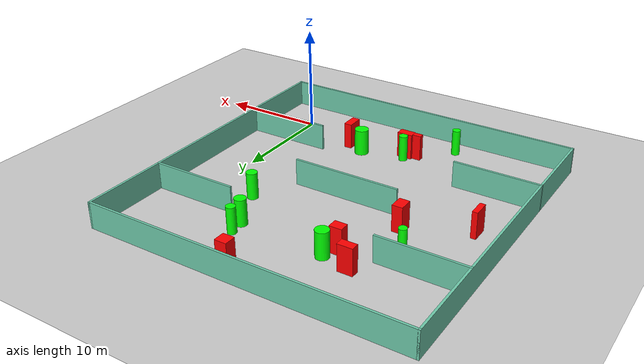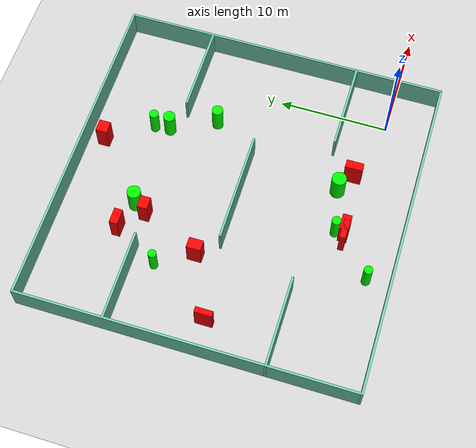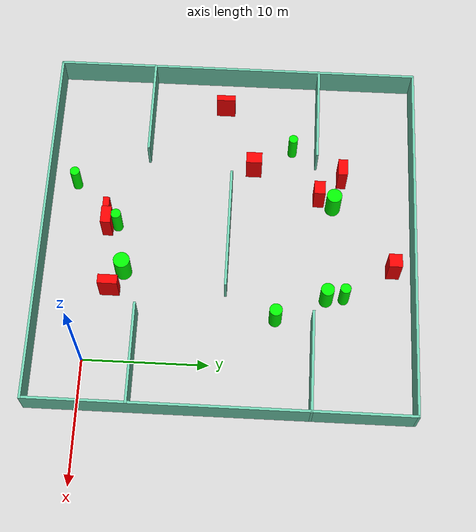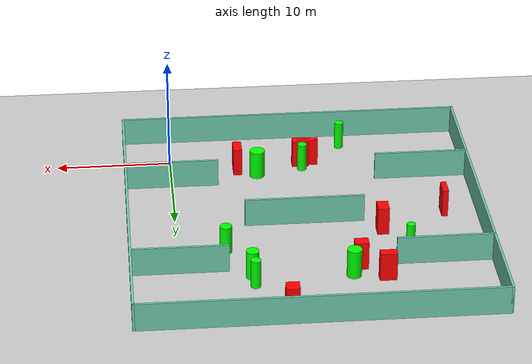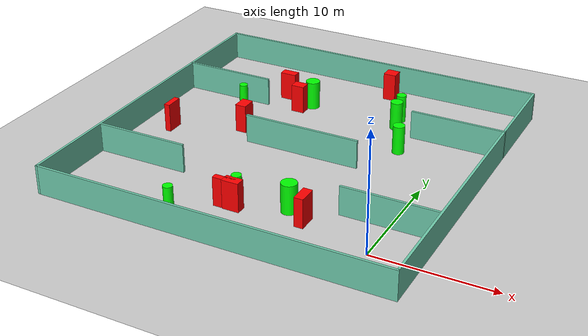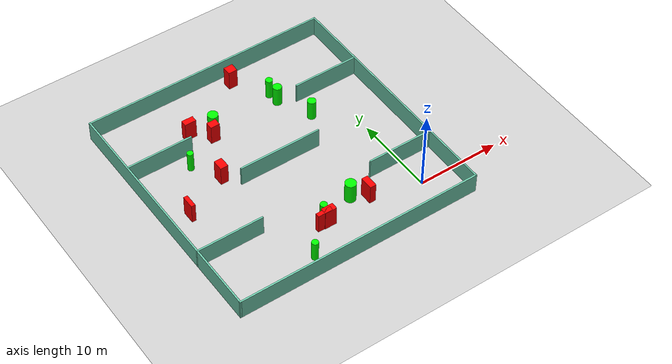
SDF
<sdf version="1.7">
 <world name="default">
  <light name="sun" type="directional">
   <pose>0 0 10 0 -0 0</pose>
   <diffuse>0.8 0.8 0.8 1</diffuse>
   <specular>0.2 0.2 0.2 1</specular>
   <attenuation>
    <range>1000</range>
    <constant>0.9</constant>
    <linear>0.01</linear>
    <quadratic>0.001</quadratic>
   </attenuation>
   <direction>-0.5 0.1 -0.9</direction>
   <spot><inner_angle>0</inner_angle><outer_angle>0</outer_angle><falloff>0</falloff></spot>
  </light>
  <model name="ground_plane">
   <static>1</static>
   <link name="link">
    <collision name="collision">
     <geometry><plane><normal>0 0 1</normal><size>100 100</size></plane></geometry>
     <surface>
      <contact><collide_bitmask>65535</collide_bitmask></contact>
      <friction><ode><mu>100</mu><mu2>50</mu2></ode></friction>
     </surface>
    </collision>
    <visual name="visual">
     <cast_shadows>0</cast_shadows>
     <geometry><plane><normal>0 0 1</normal><size>100 100</size></plane></geometry>
     <material>
      <script><uri>file://media/materials/scripts/gazebo.material</uri><name>Gazebo/Grey</name></script>
     </material>
    </visual>
   </link>
  </model>
  <gravity>0 0 -9.8</gravity>
  <magnetic_field>6e-06 2.3e-05 -4.2e-05</magnetic_field>
  <atmosphere type="adiabatic"/>
  <physics type="ode">
   <max_step_size>0.001</max_step_size>
   <real_time_factor>1</real_time_factor>
   <real_time_update_rate>1000</real_time_update_rate>
  </physics>
  <scene><ambient>0.4 0.4 0.4 1</ambient><background>0.7 0.7 0.7 1</background><shadows>1</shadows></scene>
  <spherical_coordinates>
   <surface_model>EARTH_WGS84</surface_model>
   <latitude_deg>0</latitude_deg>
   <longitude_deg>0</longitude_deg>
   <elevation>0</elevation>
   <heading_deg>0</heading_deg>
  </spherical_coordinates>
  <model name="my_base_walls">
   <link name="Wall_10">
    <collision name="Wall_10_Collision">
     <geometry><box><size>8.2 0.2 2.5</size></box></geometry>
     <pose>0 0 1.25 0 -0 0</pose>
    </collision>
    <visual name="Wall_10_Visual">
     <pose>0 0 1.25 0 -0 0</pose>
     <geometry><box><size>8.2 0.2 2.5</size></box></geometry>
     <material>
      <script><uri>file://media/materials/scripts/gazebo.material</uri><name>Gazebo/Grey</name></script>
      <ambient>0.435294 0.796078 0.67451 1</ambient>
     </material>
     <meta><layer>0</layer></meta>
    </visual>
    <pose>-11 -7 0 0 -0 0</pose>
   </link>
   <link name="Wall_12">
    <collision name="Wall_12_Collision">
     <geometry><box><size>8.2 0.2 2.5</size></box></geometry>
     <pose>0 0 1.25 0 -0 0</pose>
    </collision>
    <visual name="Wall_12_Visual">
     <pose>0 0 1.25 0 -0 0</pose>
     <geometry><box><size>8.2 0.2 2.5</size></box></geometry>
     <material>
      <script><uri>file://media/materials/scripts/gazebo.material</uri><name>Gazebo/Grey</name></script>
      <ambient>0.435294 0.796078 0.67451 1</ambient>
     </material>
     <meta><layer>0</layer></meta>
    </visual>
    <pose>-11 7 0 0 -0 0</pose>
   </link>
   <link name="Wall_14">
    <collision name="Wall_14_Collision">
     <geometry><box><size>8.2 0.2 2.5</size></box></geometry>
     <pose>0 0 1.25 0 -0 0</pose>
    </collision>
    <visual name="Wall_14_Visual">
     <pose>0 0 1.25 0 -0 0</pose>
     <geometry><box><size>8.2 0.2 2.5</size></box></geometry>
     <material>
      <script><uri>file://media/materials/scripts/gazebo.material</uri><name>Gazebo/Grey</name></script>
      <ambient>0.435294 0.796078 0.67451 1</ambient>
     </material>
     <meta><layer>0</layer></meta>
    </visual>
    <pose>11 7 0 0 -0 3.14159</pose>
   </link>
   <link name="Wall_16">
    <collision name="Wall_16_Collision">
     <geometry><box><size>10.2 0.2 2.5</size></box></geometry>
     <pose>0 0 1.25 0 -0 0</pose>
    </collision>
    <visual name="Wall_16_Visual">
     <pose>0 0 1.25 0 -0 0</pose>
     <geometry><box><size>10.2 0.2 2.5</size></box></geometry>
     <material>
      <script><uri>file://media/materials/scripts/gazebo.material</uri><name>Gazebo/Grey</name></script>
      <ambient>0.435294 0.796078 0.67451 1</ambient>
     </material>
     <meta><layer>0</layer></meta>
    </visual>
    <pose>0 0 0 0 -0 3.14159</pose>
   </link>
   <link name="Wall_2">
    <collision name="Wall_2_Collision">
     <geometry><box><size>30.2 0.2 2.5</size></box></geometry>
     <pose>0 0 1.25 0 -0 0</pose>
    </collision>
    <visual name="Wall_2_Visual">
     <pose>0 0 1.25 0 -0 0</pose>
     <geometry><box><size>30.2 0.2 2.5</size></box></geometry>
     <material>
      <script><uri>file://media/materials/scripts/gazebo.material</uri><name>Gazebo/Grey</name></script>
      <ambient>0.435294 0.796078 0.67451 1</ambient>
     </material>
     <meta><layer>0</layer></meta>
    </visual>
    <pose>0 -15 0 0 -0 3.14159</pose>
   </link>
   <link name="Wall_3">
    <collision name="Wall_3_Collision">
     <geometry><box><size>30.2 0.2 2.5</size></box></geometry>
     <pose>0 0 1.25 0 -0 0</pose>
    </collision>
    <visual name="Wall_3_Visual">
     <pose>0 0 1.25 0 -0 0</pose>
     <geometry><box><size>30.2 0.2 2.5</size></box></geometry>
     <material>
      <script><uri>file://media/materials/scripts/gazebo.material</uri><name>Gazebo/Grey</name></script>
      <ambient>0.435294 0.796078 0.67451 1</ambient>
     </material>
     <meta><layer>0</layer></meta>
    </visual>
    <pose>-15 0 0 0 -0 1.5708</pose>
   </link>
   <link name="Wall_4">
    <collision name="Wall_4_Collision">
     <geometry><box><size>30.2 0.2 2.5</size></box></geometry>
     <pose>0 0 1.25 0 -0 0</pose>
    </collision>
    <visual name="Wall_4_Visual">
     <pose>0 0 1.25 0 -0 0</pose>
     <geometry><box><size>30.2 0.2 2.5</size></box></geometry>
     <material>
      <script><uri>file://media/materials/scripts/gazebo.material</uri><name>Gazebo/Grey</name></script>
      <ambient>0.435294 0.796078 0.67451 1</ambient>
     </material>
     <meta><layer>0</layer></meta>
    </visual>
    <pose>0 15 0 0 -0 0</pose>
   </link>
   <link name="Wall_6">
    <collision name="Wall_6_Collision">
     <geometry><box><size>30.2 0.2 2.5</size></box></geometry>
     <pose>0 0 1.25 0 -0 0</pose>
    </collision>
    <visual name="Wall_6_Visual">
     <pose>0 0 1.25 0 -0 0</pose>
     <geometry><box><size>30.2 0.2 2.5</size></box></geometry>
     <material>
      <script><uri>file://media/materials/scripts/gazebo.material</uri><name>Gazebo/Grey</name></script>
      <ambient>0.435294 0.796078 0.67451 1</ambient>
     </material>
     <meta><layer>0</layer></meta>
    </visual>
    <pose>15 0 0 0 -0 1.5708</pose>
   </link>
   <link name="Wall_8">
    <collision name="Wall_8_Collision">
     <geometry><box><size>8.2 0.2 2.5</size></box></geometry>
     <pose>0 0 1.25 0 -0 0</pose>
    </collision>
    <visual name="Wall_8_Visual">
     <pose>0 0 1.25 0 -0 0</pose>
     <geometry><box><size>8.2 0.2 2.5</size></box></geometry>
     <material>
      <script><uri>file://media/materials/scripts/gazebo.material</uri><name>Gazebo/Grey</name></script>
      <ambient>0.435294 0.796078 0.67451 1</ambient>
     </material>
     <meta><layer>0</layer></meta>
    </visual>
    <pose>11 -7 0 0 -0 3.14159</pose>
   </link>
   <static>1</static>
   <pose>-11 11 0 0 -0 0</pose>
  </model>
  <model name="cylinder1">
   <static>1</static>
   <link name="link">
    <inertial>
     <mass>1</mass>
     <inertia><ixx>0.5</ixx><ixy>0</ixy><ixz>0</ixz><iyy>0.5</iyy><iyz>0</iyz><izz>1</izz></inertia>
    </inertial>
    <collision name="collision">
     <geometry><cylinder><radius>0.6612293551394033</radius><length>2.5</length></cylinder></geometry>
    </collision>
    <visual name="visual">
     <geometry><cylinder><radius>0.6612293551394033</radius><length>2.5</length></cylinder></geometry>
     <material>
      <ambient>0 1 0 1</ambient>
      <diffuse>0 1 0 1</diffuse>
      <specular>0.1 0.1 0.1 1</specular>
      <emissive>0 0 0 0</emissive>
     </material>
    </visual>
   </link>
   <pose>-7.628846167426655 2.651090657952399 1.25 0 0 0</pose>
  </model>
  <model name="cylinder2">
   <static>1</static>
   <link name="link">
    <inertial>
     <mass>1</mass>
     <inertia><ixx>0.5</ixx><ixy>0</ixy><ixz>0</ixz><iyy>0.5</iyy><iyz>0</iyz><izz>1</izz></inertia>
    </inertial>
    <collision name="collision">
     <geometry><cylinder><radius>0.4222293139690823</radius><length>2.5</length></cylinder></geometry>
    </collision>
    <visual name="visual">
     <geometry><cylinder><radius>0.4222293139690823</radius><length>2.5</length></cylinder></geometry>
     <material>
      <ambient>0 1 0 1</ambient>
      <diffuse>0 1 0 1</diffuse>
      <specular>0.1 0.1 0.1 1</specular>
      <emissive>0 0 0 0</emissive>
     </material>
    </visual>
   </link>
   <pose>-6.069152031772253 20.466974289004845 1.25 0 0 0</pose>
  </model>
  <model name="cylinder3">
   <static>1</static>
   <link name="link">
    <inertial>
     <mass>1</mass>
     <inertia><ixx>0.5</ixx><ixy>0</ixy><ixz>0</ixz><iyy>0.5</iyy><iyz>0</iyz><izz>1</izz></inertia>
    </inertial>
    <collision name="collision">
     <geometry><cylinder><radius>0.5091317982469911</radius><length>2.5</length></cylinder></geometry>
    </collision>
    <visual name="visual">
     <geometry><cylinder><radius>0.5091317982469911</radius><length>2.5</length></cylinder></geometry>
     <material>
      <ambient>0 1 0 1</ambient>
      <diffuse>0 1 0 1</diffuse>
      <specular>0.1 0.1 0.1 1</specular>
      <emissive>0 0 0 0</emissive>
     </material>
    </visual>
   </link>
   <pose>-4.011441541778222 15.053329724634025 1.25 0 0 0</pose>
  </model>
  <model name="cylinder4">
   <static>1</static>
   <link name="link">
    <inertial>
     <mass>1</mass>
     <inertia><ixx>0.5</ixx><ixy>0</ixy><ixz>0</ixz><iyy>0.5</iyy><iyz>0</iyz><izz>1</izz></inertia>
    </inertial>
    <collision name="collision">
     <geometry><cylinder><radius>0.6203081607417327</radius><length>2.5</length></cylinder></geometry>
    </collision>
    <visual name="visual">
     <geometry><cylinder><radius>0.6203081607417327</radius><length>2.5</length></cylinder></geometry>
     <material>
      <ambient>0 1 0 1</ambient>
      <diffuse>0 1 0 1</diffuse>
      <specular>0.1 0.1 0.1 1</specular>
      <emissive>0 0 0 0</emissive>
     </material>
    </visual>
   </link>
   <pose>-14.210910859842478 19.48613088436254 1.25 0 0 0</pose>
  </model>
  <model name="cylinder5">
   <static>1</static>
   <link name="link">
    <inertial>
     <mass>1</mass>
     <inertia><ixx>0.5</ixx><ixy>0</ixy><ixz>0</ixz><iyy>0.5</iyy><iyz>0</iyz><izz>1</izz></inertia>
    </inertial>
    <collision name="collision">
     <geometry><cylinder><radius>0.4141892194214954</radius><length>2.5</length></cylinder></geometry>
    </collision>
    <visual name="visual">
     <geometry><cylinder><radius>0.4141892194214954</radius><length>2.5</length></cylinder></geometry>
     <material>
      <ambient>0 1 0 1</ambient>
      <diffuse>0 1 0 1</diffuse>
      <specular>0.1 0.1 0.1 1</specular>
      <emissive>0 0 0 0</emissive>
     </material>
    </visual>
   </link>
   <pose>-11.701477556710698 1.8323470879270856 1.25 0 0 0</pose>
  </model>
  <model name="cylinder6">
   <static>1</static>
   <link name="link">
    <inertial>
     <mass>1</mass>
     <inertia><ixx>0.5</ixx><ixy>0</ixy><ixz>0</ixz><iyy>0.5</iyy><iyz>0</iyz><izz>1</izz></inertia>
    </inertial>
    <collision name="collision">
     <geometry><cylinder><radius>0.37132175595379513</radius><length>2.5</length></cylinder></geometry>
    </collision>
    <visual name="visual">
     <geometry><cylinder><radius>0.37132175595379513</radius><length>2.5</length></cylinder></geometry>
     <material>
      <ambient>0 1 0 1</ambient>
      <diffuse>0 1 0 1</diffuse>
      <specular>0.1 0.1 0.1 1</specular>
      <emissive>0 0 0 0</emissive>
     </material>
    </visual>
   </link>
   <pose>-19.341015305333034 15.996649284807258 1.25 0 0 0</pose>
  </model>
  <model name="cylinder7">
   <static>1</static>
   <link name="link">
    <inertial>
     <mass>1</mass>
     <inertia><ixx>0.5</ixx><ixy>0</ixy><ixz>0</ixz><iyy>0.5</iyy><iyz>0</iyz><izz>1</izz></inertia>
    </inertial>
    <collision name="collision">
     <geometry><cylinder><radius>0.5359036100651555</radius><length>2.5</length></cylinder></geometry>
    </collision>
    <visual name="visual">
     <geometry><cylinder><radius>0.5359036100651555</radius><length>2.5</length></cylinder></geometry>
     <material>
      <ambient>0 1 0 1</ambient>
      <diffuse>0 1 0 1</diffuse>
      <specular>0.1 0.1 0.1 1</specular>
      <emissive>0 0 0 0</emissive>
     </material>
    </visual>
   </link>
   <pose>-5.916590193358543 19.054804657541847 1.25 0 0 0</pose>
  </model>
  <model name="cylinder8">
   <static>1</static>
   <link name="link">
    <inertial>
     <mass>1</mass>
     <inertia><ixx>0.5</ixx><ixy>0</ixy><ixz>0</ixz><iyy>0.5</iyy><iyz>0</iyz><izz>1</izz></inertia>
    </inertial>
    <collision name="collision">
     <geometry><cylinder><radius>0.3943370623119205</radius><length>2.5</length></cylinder></geometry>
    </collision>
    <visual name="visual">
     <geometry><cylinder><radius>0.3943370623119205</radius><length>2.5</length></cylinder></geometry>
     <material>
      <ambient>0 1 0 1</ambient>
      <diffuse>0 1 0 1</diffuse>
      <specular>0.1 0.1 0.1 1</specular>
      <emissive>0 0 0 0</emissive>
     </material>
    </visual>
   </link>
   <pose>-15.413590006752624 -1.892148546463985 1.25 0 0 0</pose>
  </model>
  <model name="box1">
   <static>1</static>
   <link name="link">
    <inertial>
     <mass>1</mass>
     <inertia><ixx>0.083</ixx><ixy>0</ixy><ixz>0</ixz><iyy>0.083</iyy><iyz>0</iyz><izz>0.083</izz></inertia>
    </inertial>
    <collision name="collision">
     <geometry><box><size>1.1507208838695915 0.9052020642126438 2.5</size></box></geometry>
    </collision>
    <visual name="visual">
     <geometry><box><size>1.1507208838695915 0.9052020642126438 2.5</size></box></geometry>
     <material>
      <ambient>1 0 0 1</ambient>
      <diffuse>1 0 0 1</diffuse>
      <specular>0.1 0.1 0.1 1</specular>
      <emissive>0 0 0 0</emissive>
     </material>
    </visual>
    <sensor name="my_contact" type="contact">
     <contact><collision>box_collision</collision><topic>__default_topic__</topic></contact>
    </sensor>
   </link>
   <pose>-14.922259016687697 18.292447244908963 1.25 0 0 0</pose>
  </model>
  <model name="box2">
   <static>1</static>
   <link name="link">
    <inertial>
     <mass>1</mass>
     <inertia><ixx>0.083</ixx><ixy>0</ixy><ixz>0</ixz><iyy>0.083</iyy><iyz>0</iyz><izz>0.083</izz></inertia>
    </inertial>
    <collision name="collision">
     <geometry><box><size>1.8059199885835255 0.5156089289099064 2.5</size></box></geometry>
    </collision>
    <visual name="visual">
     <geometry><box><size>1.8059199885835255 0.5156089289099064 2.5</size></box></geometry>
     <material>
      <ambient>1 0 0 1</ambient>
      <diffuse>1 0 0 1</diffuse>
      <specular>0.1 0.1 0.1 1</specular>
      <emissive>0 0 0 0</emissive>
     </material>
    </visual>
    <sensor name="my_contact" type="contact">
     <contact><collision>box_collision</collision><topic>__default_topic__</topic></contact>
    </sensor>
   </link>
   <pose>-12.25456511386533 0.9534967952000706 1.25 0 0 0</pose>
  </model>
  <model name="box3">
   <static>1</static>
   <link name="link">
    <inertial>
     <mass>1</mass>
     <inertia><ixx>0.083</ixx><ixy>0</ixy><ixz>0</ixz><iyy>0.083</iyy><iyz>0</iyz><izz>0.083</izz></inertia>
    </inertial>
    <collision name="collision">
     <geometry><box><size>0.9680713903027396 1.2989690027192822 2.5</size></box></geometry>
    </collision>
    <visual name="visual">
     <geometry><box><size>0.9680713903027396 1.2989690027192822 2.5</size></box></geometry>
     <material>
      <ambient>1 0 0 1</ambient>
      <diffuse>1 0 0 1</diffuse>
      <specular>0.1 0.1 0.1 1</specular>
      <emissive>0 0 0 0</emissive>
     </material>
    </visual>
    <sensor name="my_contact" type="contact">
     <contact><collision>box_collision</collision><topic>__default_topic__</topic></contact>
    </sensor>
   </link>
   <pose>-17.428068790067435 12.809608062698764 1.25 0 0 0</pose>
  </model>
  <model name="box4">
   <static>1</static>
   <link name="link">
    <inertial>
     <mass>1</mass>
     <inertia><ixx>0.083</ixx><ixy>0</ixy><ixz>0</ixz><iyy>0.083</iyy><iyz>0</iyz><izz>0.083</izz></inertia>
    </inertial>
    <collision name="collision">
     <geometry><box><size>1.454936184311777 0.8236187882673723 2.5</size></box></geometry>
    </collision>
    <visual name="visual">
     <geometry><box><size>1.454936184311777 0.8236187882673723 2.5</size></box></geometry>
     <material>
      <ambient>1 0 0 1</ambient>
      <diffuse>1 0 0 1</diffuse>
      <specular>0.1 0.1 0.1 1</specular>
      <emissive>0 0 0 0</emissive>
     </material>
    </visual>
    <sensor name="my_contact" type="contact">
     <contact><collision>box_collision</collision><topic>__default_topic__</topic></contact>
    </sensor>
   </link>
   <pose>-11.606993399374495 1.0389663458430602 1.25 0 0 0</pose>
  </model>
  <model name="box5">
   <static>1</static>
   <link name="link">
    <inertial>
     <mass>1</mass>
     <inertia><ixx>0.083</ixx><ixy>0</ixy><ixz>0</ixz><iyy>0.083</iyy><iyz>0</iyz><izz>0.083</izz></inertia>
    </inertial>
    <collision name="collision">
     <geometry><box><size>0.7585004760470317 1.5817044793635997 2.5</size></box></geometry>
    </collision>
    <visual name="visual">
     <geometry><box><size>0.7585004760470317 1.5817044793635997 2.5</size></box></geometry>
     <material>
      <ambient>1 0 0 1</ambient>
      <diffuse>1 0 0 1</diffuse>
      <specular>0.1 0.1 0.1 1</specular>
      <emissive>0 0 0 0</emissive>
     </material>
    </visual>
    <sensor name="my_contact" type="contact">
     <contact><collision>box_collision</collision><topic>__default_topic__</topic></contact>
    </sensor>
   </link>
   <pose>-5.94015536631845 1.6900793993683552 1.25 0 0 0</pose>
  </model>
  <model name="box6">
   <static>1</static>
   <link name="link">
    <inertial>
     <mass>1</mass>
     <inertia><ixx>0.083</ixx><ixy>0</ixy><ixz>0</ixz><iyy>0.083</iyy><iyz>0</iyz><izz>0.083</izz></inertia>
    </inertial>
    <collision name="collision">
     <geometry><box><size>1.1145920764829595 1.067122375661382 2.5</size></box></geometry>
    </collision>
    <visual name="visual">
     <geometry><box><size>1.1145920764829595 1.067122375661382 2.5</size></box></geometry>
     <material>
      <ambient>1 0 0 1</ambient>
      <diffuse>1 0 0 1</diffuse>
      <specular>0.1 0.1 0.1 1</specular>
      <emissive>0 0 0 0</emissive>
     </material>
    </visual>
    <sensor name="my_contact" type="contact">
     <contact><collision>box_collision</collision><topic>__default_topic__</topic></contact>
    </sensor>
   </link>
   <pose>-8.681997875858391 24.40662419538048 1.25 0 0 0</pose>
  </model>
  <model name="box7">
   <static>1</static>
   <link name="link">
    <inertial>
     <mass>1</mass>
     <inertia><ixx>0.083</ixx><ixy>0</ixy><ixz>0</ixz><iyy>0.083</iyy><iyz>0</iyz><izz>0.083</izz></inertia>
    </inertial>
    <collision name="collision">
     <geometry><box><size>1.417013251203182 0.7605867236862448 2.5</size></box></geometry>
    </collision>
    <visual name="visual">
     <geometry><box><size>1.417013251203182 0.7605867236862448 2.5</size></box></geometry>
     <material>
      <ambient>1 0 0 1</ambient>
      <diffuse>1 0 0 1</diffuse>
      <specular>0.1 0.1 0.1 1</specular>
      <emissive>0 0 0 0</emissive>
     </material>
    </visual>
    <sensor name="my_contact" type="contact">
     <contact><collision>box_collision</collision><topic>__default_topic__</topic></contact>
    </sensor>
   </link>
   <pose>-16.897924153643306 20.15792158095155 1.25 0 0 0</pose>
  </model>
  <model name="box8">
   <static>1</static>
   <link name="link">
    <inertial>
     <mass>1</mass>
     <inertia><ixx>0.083</ixx><ixy>0</ixy><ixz>0</ixz><iyy>0.083</iyy><iyz>0</iyz><izz>0.083</izz></inertia>
    </inertial>
    <collision name="collision">
     <geometry><box><size>0.5035956907162671 1.5701413838216598 2.5</size></box></geometry>
    </collision>
    <visual name="visual">
     <geometry><box><size>0.5035956907162671 1.5701413838216598 2.5</size></box></geometry>
     <material>
      <ambient>1 0 0 1</ambient>
      <diffuse>1 0 0 1</diffuse>
      <specular>0.1 0.1 0.1 1</specular>
      <emissive>0 0 0 0</emissive>
     </material>
    </visual>
    <sensor name="my_contact" type="contact">
     <contact><collision>box_collision</collision><topic>__default_topic__</topic></contact>
    </sensor>
   </link>
   <pose>-23.073918622792064 10.191526556543284 1.25 0 0 0</pose>
  </model>
 </world>
</sdf>
